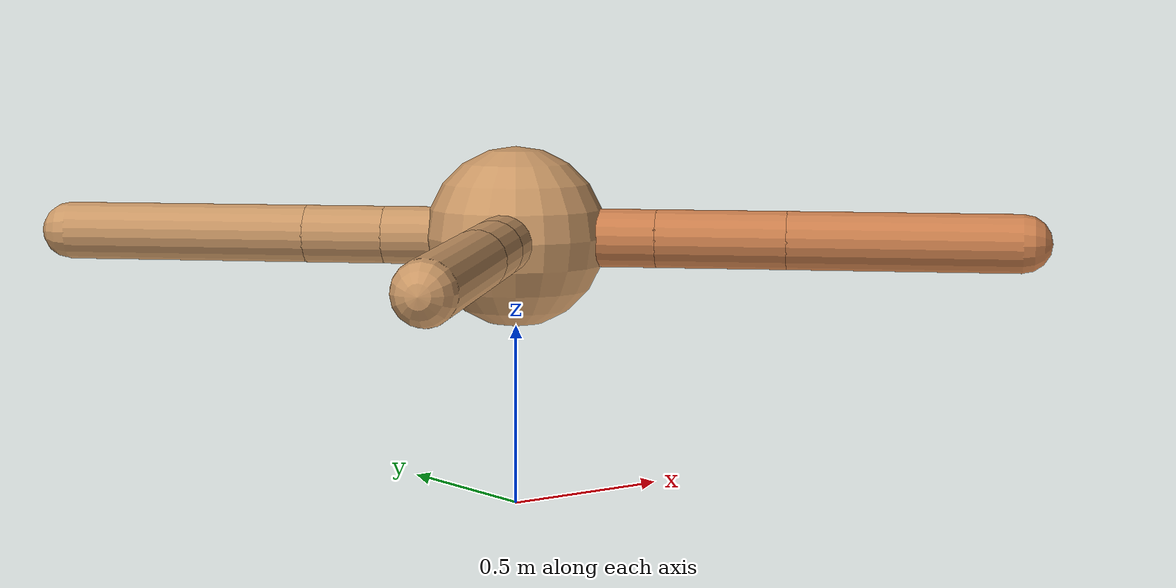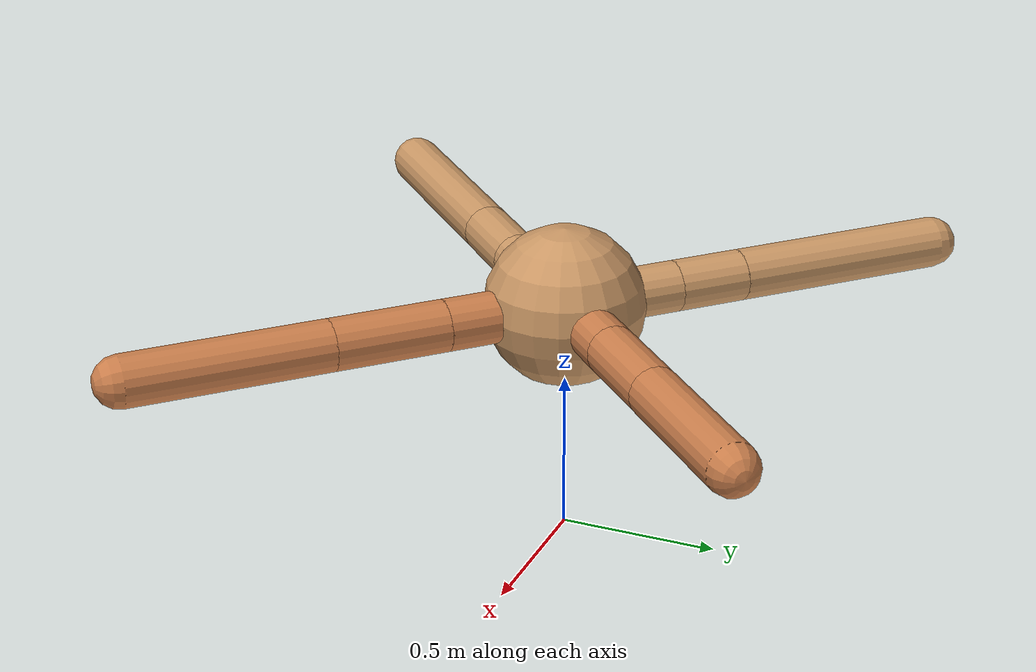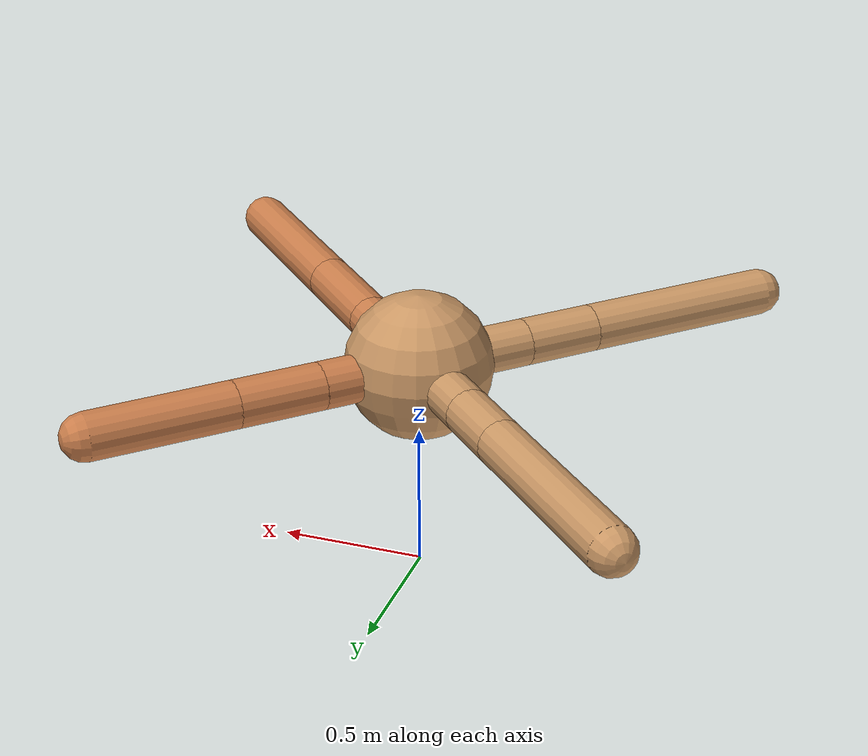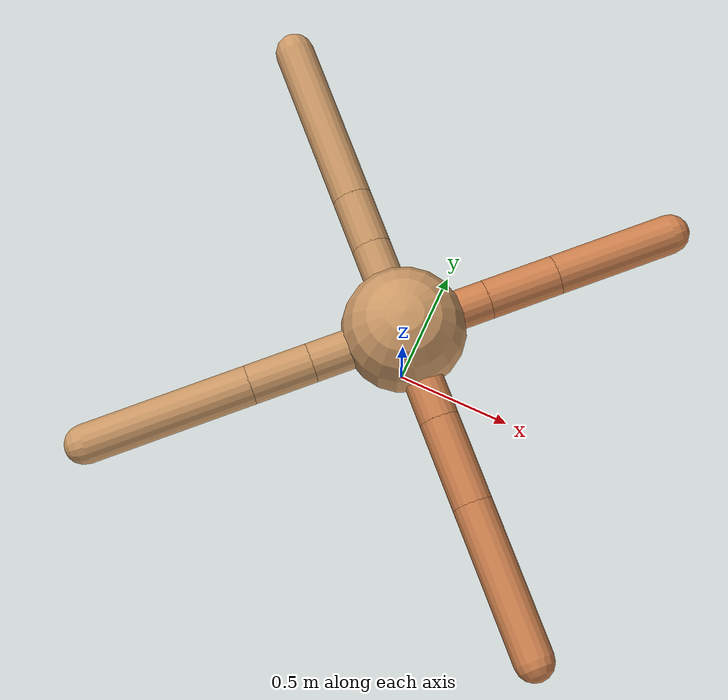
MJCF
<mujoco model="ant">
  <compiler angle="degree" coordinate="local" inertiafromgeom="true" />
  <option integrator="RK4" timestep="0.01" />
  <custom>
    <numeric data="0.0 0.0 0.55 1.0 0.0 0.0 0.0 0.0 1.0 0.0 -1.0 0.0 -1.0 0.0 1.0" name="init_qpos" />
  </custom>
  <default>
    <joint armature="1" damping="1" limited="true" />
    <geom conaffinity="0" condim="3" density="5.0" friction="1.5 0.1 0.1" margin="0.01" rgba="0.8 0.6 0.4 1" />
  </default>
  <worldbody>
    <body name="torso" pos="0 0 0.75">
      <geom name="torso_geom" pos="0 0 0" size="0.25" type="sphere" />

      <body name="front_left_leg" pos="0 0 0">
        <geom fromto="0.0 0.0 0.0 0.25012998981264056 0.25012998981264056 0.0" name="aux_1_geom" size="0.08" type="capsule" rgba=".8 .5 .3 1" />
        <body name="aux_1" pos="0.25012998981264056 0.25012998981264056 0.0">
          <joint axis="0 0 1" name="hip_1" pos="0.0 0.0 0.0" range="-40 40" type="hinge" />
          <geom fromto="0.0 0.0 0.0 0.20729886971064457 0.20729886971064457 0.0" name="left_leg_geom" size="0.08" type="capsule" rgba=".8 .5 .3 1" />
          <body pos="0.20729886971064457 0.20729886971064457 0.0" name="front_left_foot">
            <joint axis="-1 1 0" name="ankle_1" pos="0.0 0.0 0.0" range="30 100" type="hinge" />
            <geom fromto="0.0 0.0 0.0 0.35008399687650726 0.35008399687650726 0.0" name="left_ankle_geom" size="0.08" type="capsule" rgba=".8 .5 .3 1" />
          </body>
        </body>
      </body>
      <body name="front_right_leg" pos="0 0 0">
        <geom fromto="0.0 0.0 0.0 -0.2603209219261525 0.2603209219261525 0.0" name="aux_2_geom" size="0.08" type="capsule" />
        <body name="aux_2" pos="-0.2603209219261525 0.2603209219261525 0.0">
          <joint axis="0 0 1" name="hip_2" pos="0.0 0.0 0.0" range="-40 40" type="hinge" />
          <geom fromto="0.0 0.0 0.0 -0.15742707416057256 0.15742707416057256 0.0" name="right_leg_geom" size="0.08" type="capsule" />
          <body pos="-0.15742707416057256 0.15742707416057256 0.0" name="front_right_foot">
            <joint axis="1 1 0" name="ankle_2" pos="0.0 0.0 0.0" range="-100 -30" type="hinge" />
            <geom fromto="0.0 0.0 0.0 -0.4866752368904635 0.4866752368904635 0.0" name="right_ankle_geom" size="0.08" type="capsule" />
          </body>
        </body>
      </body>
      <body name="left_back_leg" pos="0 0 0">
        <geom fromto="0.0 0.0 0.0 -0.2744654971383091 -0.2744654971383091 0.0" name="aux_3_geom" size="0.08" type="capsule" />
        <body name="aux_3" pos="-0.2744654971383091 -0.2744654971383091 0.0">
          <joint axis="0 0 1" name="hip_3" pos="0.0 0.0 0.0" range="-40 40" type="hinge" />
          <geom fromto="0.0 0.0 0.0 -0.18020260969770252 -0.18020260969770252 0.0" name="back_leg_geom" size="0.08" type="capsule" />
          <body pos="-0.18020260969770252 -0.18020260969770252 0.0" name="left_back_foot">
            <joint axis="-1 1 0" name="ankle_3" pos="0.0 0.0 0.0" range="-100 -30" type="hinge" />
            <geom fromto="0.0 0.0 0.0 -0.47951289951445714 -0.47951289951445714 0.0" name="third_ankle_geom" size="0.08" type="capsule" />
          </body>
        </body>
      </body>
      <body name="right_back_leg" pos="0 0 0">
        <geom fromto="0.0 0.0 0.0 0.27618520139921093 -0.27618520139921093 0.0" name="aux_4_geom" size="0.08" type="capsule" rgba=".8 .5 .3 1" />
        <body name="aux_4" pos="0.27618520139921093 -0.27618520139921093 0.0">
          <joint axis="0 0 1" name="hip_4" pos="0.0 0.0 0.0" range="-40 40" type="hinge" />
          <geom fromto="0.0 0.0 0.0 0.25189935565463667 -0.25189935565463667 0.0" name="rightback_leg_geom" size="0.08" type="capsule" rgba=".8 .5 .3 1" />
          <body pos="0.25189935565463667 -0.25189935565463667 0.0" name="right_back_foot">
            <joint axis="1 1 0" name="ankle_4" pos="0.0 0.0 0.0" range="30 100" type="hinge" />
            <geom fromto="0.0 0.0 0.0 0.44680722285358376 -0.44680722285358376 0.0" name="fourth_ankle_geom" size="0.08" type="capsule" rgba=".8 .5 .3 1" />
          </body>
        </body>
      </body>
    </body>
  </worldbody>
  <actuator>
    <motor ctrllimited="true" ctrlrange="-1.0 1.0" joint="hip_4" gear="150" />
    <motor ctrllimited="true" ctrlrange="-1.0 1.0" joint="ankle_4" gear="150" />
    <motor ctrllimited="true" ctrlrange="-1.0 1.0" joint="hip_1" gear="150" />
    <motor ctrllimited="true" ctrlrange="-1.0 1.0" joint="ankle_1" gear="150" />
    <motor ctrllimited="true" ctrlrange="-1.0 1.0" joint="hip_2" gear="150" />
    <motor ctrllimited="true" ctrlrange="-1.0 1.0" joint="ankle_2" gear="150" />
    <motor ctrllimited="true" ctrlrange="-1.0 1.0" joint="hip_3" gear="150" />
    <motor ctrllimited="true" ctrlrange="-1.0 1.0" joint="ankle_3" gear="150" />
  </actuator>
</mujoco>
